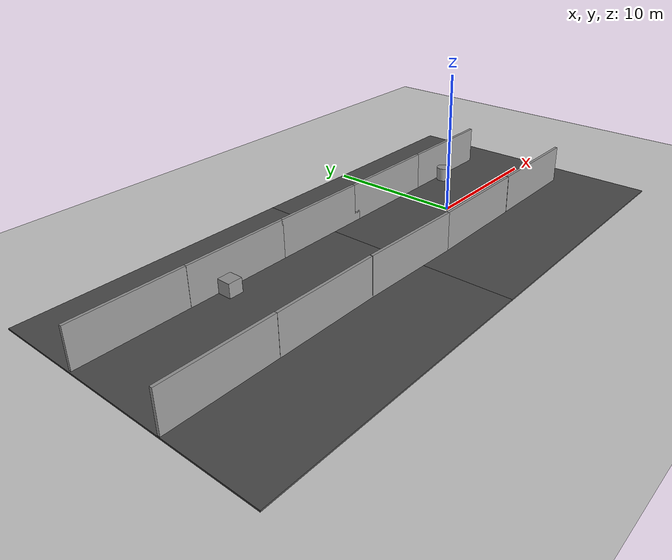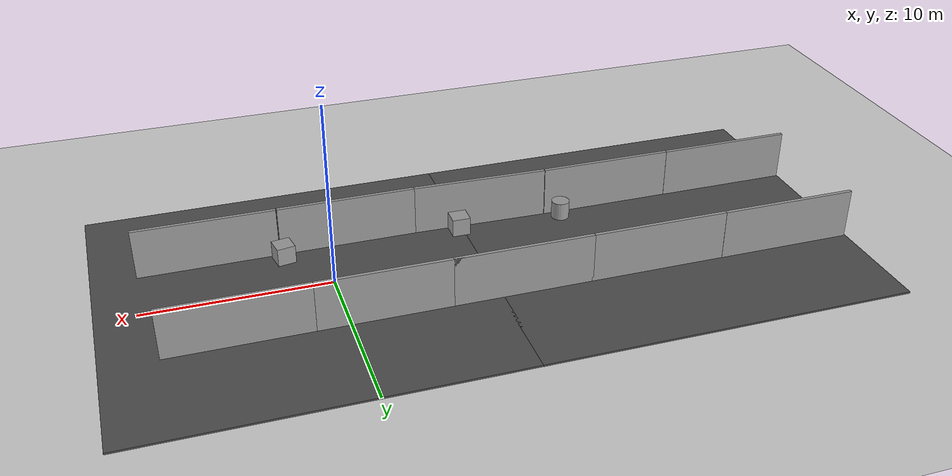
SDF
<sdf version="1.4">
 <world name="default">
  <physics type="ode">
   <gravity>0 0 -9.8</gravity>
   <ode>
    <solver><type>quick</type><iters>20</iters><sor>1</sor></solver>
    <constraints>
     <cfm>0</cfm>
     <erp>0.2</erp>
     <contact_max_correcting_vel>100</contact_max_correcting_vel>
     <contact_surface_layer>0</contact_surface_layer>
    </constraints>
   </ode>
   <max_step_size>0.001</max_step_size>
   <real_time_factor>1</real_time_factor>
   <real_time_update_rate>1000</real_time_update_rate>
  </physics>
  <light name="sun" type="directional">
   <pose>0 0 10 0 -0 0</pose>
   <diffuse>0.8 0.8 0.8 1</diffuse>
   <specular>0.2 0.2 0.2 1</specular>
   <attenuation>
    <range>1000</range>
    <constant>0.9</constant>
    <linear>0.01</linear>
    <quadratic>0.001</quadratic>
   </attenuation>
   <direction>-0.5 0.1 -0.9</direction>
  </light>
  <model name="ground_plane">
   <static>1</static>
   <link name="link">
    <collision name="collision">
     <geometry><plane><normal>0 0 1</normal><size>100 100</size></plane></geometry>
     <surface><friction><ode><mu>100</mu><mu2>50</mu2></ode></friction></surface>
    </collision>
    <visual name="visual">
     <cast_shadows>0</cast_shadows>
     <geometry><plane><normal>0 0 1</normal><size>100 100</size></plane></geometry>
     <material>
      <script><uri>file://media/materials/scripts/gazebo.material</uri><name>Gazebo/Grey</name></script>
     </material>
    </visual>
    <velocity_decay><linear>0</linear><angular>0</angular></velocity_decay>
   </link>
  </model>
  <scene><ambient>0.4 0.4 0.4 1</ambient><background>0.7 0.7 0.7 1</background><shadows>1</shadows></scene>
  <spherical_coordinates>
   <surface_model>EARTH_WGS84</surface_model>
   <latitude_deg>0</latitude_deg>
   <longitude_deg>0</longitude_deg>
   <elevation>0</elevation>
   <heading_deg>0</heading_deg>
  </spherical_coordinates>
  <model name="unit_box_1">
   <pose>2.11377 -2.87854 0.55 1e-06 -2.64698e-23 0.170882</pose>
   <link name="link">
    <inertial>
     <mass>1</mass>
     <inertia><ixx>1</ixx><ixy>0</ixy><ixz>0</ixz><iyy>1</iyy><iyz>0</iyz><izz>1</izz></inertia>
    </inertial>
    <collision name="collision"><geometry><box><size>1 1 1</size></box></geometry></collision>
    <visual name="visual">
     <geometry><box><size>1 1 1</size></box></geometry>
     <material>
      <script><uri>file://media/materials/scripts/gazebo.material</uri><name>Gazebo/Grey</name></script>
     </material>
    </visual>
    <velocity_decay><linear>0</linear><angular>0</angular></velocity_decay>
   </link>
   <static>0</static>
  </model>
  <model name="unit_cylinder_1">
   <pose>4.47184 3.4 0.550002 4e-06 -2e-06 -1.7e-05</pose>
   <link name="link">
    <inertial>
     <mass>1</mass>
     <inertia><ixx>1</ixx><ixy>0</ixy><ixz>0</ixz><iyy>1</iyy><iyz>0</iyz><izz>1</izz></inertia>
    </inertial>
    <collision name="collision">
     <geometry><cylinder><radius>0.5</radius><length>1</length></cylinder></geometry>
    </collision>
    <visual name="visual">
     <geometry><cylinder><radius>0.5</radius><length>1</length></cylinder></geometry>
     <material>
      <script><uri>file://media/materials/scripts/gazebo.material</uri><name>Gazebo/Grey</name></script>
     </material>
    </visual>
    <velocity_decay><linear>0</linear><angular>0</angular></velocity_decay>
   </link>
   <static>0</static>
  </model>
  <model name="unit_cylinder_3">
   <pose>-13.5577 -2.72953 0.550004 6e-06 -5e-06 2.1e-05</pose>
   <link name="link">
    <inertial>
     <mass>1</mass>
     <inertia><ixx>1</ixx><ixy>0</ixy><ixz>0</ixz><iyy>1</iyy><iyz>0</iyz><izz>1</izz></inertia>
    </inertial>
    <collision name="collision">
     <geometry><cylinder><radius>0.5</radius><length>1</length></cylinder></geometry>
    </collision>
    <visual name="visual">
     <geometry><cylinder><radius>0.5</radius><length>1</length></cylinder></geometry>
     <material>
      <script><uri>file://media/materials/scripts/gazebo.material</uri><name>Gazebo/Grey</name></script>
     </material>
    </visual>
    <velocity_decay><linear>0</linear><angular>0</angular></velocity_decay>
   </link>
   <static>0</static>
  </model>
  <model name="unit_box_3">
   <pose>-17.6574 3.39931 0.55 0 -1e-06 0.00013</pose>
   <link name="link">
    <inertial>
     <mass>1</mass>
     <inertia><ixx>1</ixx><ixy>0</ixy><ixz>0</ixz><iyy>1</iyy><iyz>0</iyz><izz>1</izz></inertia>
    </inertial>
    <collision name="collision"><geometry><box><size>1 1 1</size></box></geometry></collision>
    <visual name="visual">
     <geometry><box><size>1 1 1</size></box></geometry>
     <material>
      <script><uri>file://media/materials/scripts/gazebo.material</uri><name>Gazebo/Grey</name></script>
     </material>
    </visual>
    <velocity_decay><linear>0</linear><angular>0</angular></velocity_decay>
   </link>
   <static>0</static>
  </model>
  <model name="unit_box_10">
   <pose>-7.63848 -2.88781 0.550001 -3e-06 -0 -0.012243</pose>
   <link name="link">
    <inertial>
     <mass>1</mass>
     <inertia><ixx>1</ixx><ixy>0</ixy><ixz>0</ixz><iyy>1</iyy><iyz>0</iyz><izz>1</izz></inertia>
    </inertial>
    <collision name="collision"><geometry><box><size>1 1 1</size></box></geometry></collision>
    <visual name="visual">
     <geometry><box><size>1 1 1</size></box></geometry>
     <material>
      <script><uri>file://media/materials/scripts/gazebo.material</uri><name>Gazebo/Grey</name></script>
     </material>
    </visual>
    <velocity_decay><linear>0</linear><angular>0</angular></velocity_decay>
   </link>
   <static>0</static>
  </model>
  <model name="asphalt_plane">
   <static>1</static>
   <link name="link">
    <collision name="collision"><geometry><box><size>20 20 0.1</size></box></geometry></collision>
    <visual name="visual">
     <cast_shadows>0</cast_shadows>
     <geometry><box><size>20 20 0.1</size></box></geometry>
     <material>
      <script>
       <uri>model://asphalt_plane/materials/scripts</uri>
       <uri>model://asphalt_plane/materials/textures</uri>
       <name>vrc/asphalt</name>
      </script>
     </material>
    </visual>
    <velocity_decay><linear>0</linear><angular>0</angular></velocity_decay>
   </link>
   <pose>2.11096 0.047895 0 0 -0 0</pose>
  </model>
  <model name="grey_wall">
   <static>1</static>
   <link name="link">
    <pose>0 0 1.4 0 -0 0</pose>
    <collision name="collision"><geometry><box><size>7.5 0.2 2.8</size></box></geometry></collision>
    <visual name="visual">
     <cast_shadows>0</cast_shadows>
     <geometry><box><size>7.5 0.2 2.8</size></box></geometry>
     <material>
      <script>
       <uri>model://grey_wall/materials/scripts</uri>
       <uri>model://grey_wall/materials/textures</uri>
       <name>vrc/grey_wall</name>
      </script>
     </material>
    </visual>
    <velocity_decay><linear>0</linear><angular>0</angular></velocity_decay>
   </link>
   <pose>-9.01495 -3.45912 -0 0 0 -0.026807</pose>
  </model>
  <model name="grey_wall_0">
   <static>1</static>
   <link name="link">
    <pose>0 0 1.4 0 -0 0</pose>
    <collision name="collision"><geometry><box><size>7.5 0.2 2.8</size></box></geometry></collision>
    <visual name="visual">
     <cast_shadows>0</cast_shadows>
     <geometry><box><size>7.5 0.2 2.8</size></box></geometry>
     <material>
      <script>
       <uri>model://grey_wall/materials/scripts</uri>
       <uri>model://grey_wall/materials/textures</uri>
       <name>vrc/grey_wall</name>
      </script>
     </material>
    </visual>
    <velocity_decay><linear>0</linear><angular>0</angular></velocity_decay>
   </link>
   <pose>-9 4 0 0 -0 0</pose>
  </model>
  <model name="grey_wall_1">
   <static>1</static>
   <link name="link">
    <pose>0 0 1.4 0 -0 0</pose>
    <collision name="collision"><geometry><box><size>7.5 0.2 2.8</size></box></geometry></collision>
    <visual name="visual">
     <cast_shadows>0</cast_shadows>
     <geometry><box><size>7.5 0.2 2.8</size></box></geometry>
     <material>
      <script>
       <uri>model://grey_wall/materials/scripts</uri>
       <uri>model://grey_wall/materials/textures</uri>
       <name>vrc/grey_wall</name>
      </script>
     </material>
    </visual>
    <velocity_decay><linear>0</linear><angular>0</angular></velocity_decay>
   </link>
   <pose>-2 4 0 0 -0 0</pose>
  </model>
  <model name="grey_wall_2">
   <static>1</static>
   <link name="link">
    <pose>0 0 1.4 0 -0 0</pose>
    <collision name="collision"><geometry><box><size>7.5 0.2 2.8</size></box></geometry></collision>
    <visual name="visual">
     <cast_shadows>0</cast_shadows>
     <geometry><box><size>7.5 0.2 2.8</size></box></geometry>
     <material>
      <script>
       <uri>model://grey_wall/materials/scripts</uri>
       <uri>model://grey_wall/materials/textures</uri>
       <name>vrc/grey_wall</name>
      </script>
     </material>
    </visual>
    <velocity_decay><linear>0</linear><angular>0</angular></velocity_decay>
   </link>
   <pose>5.49448 4 0 0 -0 0</pose>
  </model>
  <model name="grey_wall_3">
   <static>1</static>
   <link name="link">
    <pose>0 0 1.4 0 -0 0</pose>
    <collision name="collision"><geometry><box><size>7.5 0.2 2.8</size></box></geometry></collision>
    <visual name="visual">
     <cast_shadows>0</cast_shadows>
     <geometry><box><size>7.5 0.2 2.8</size></box></geometry>
     <material>
      <script>
       <uri>model://grey_wall/materials/scripts</uri>
       <uri>model://grey_wall/materials/textures</uri>
       <name>vrc/grey_wall</name>
      </script>
     </material>
    </visual>
    <velocity_decay><linear>0</linear><angular>0</angular></velocity_decay>
   </link>
   <pose>-1.54611 -3.55647 0 0 -0 0</pose>
  </model>
  <model name="grey_wall_4">
   <static>1</static>
   <link name="link">
    <pose>0 0 1.4 0 -0 0</pose>
    <collision name="collision"><geometry><box><size>7.5 0.2 2.8</size></box></geometry></collision>
    <visual name="visual">
     <cast_shadows>0</cast_shadows>
     <geometry><box><size>7.5 0.2 2.8</size></box></geometry>
     <material>
      <script>
       <uri>model://grey_wall/materials/scripts</uri>
       <uri>model://grey_wall/materials/textures</uri>
       <name>vrc/grey_wall</name>
      </script>
     </material>
    </visual>
    <velocity_decay><linear>0</linear><angular>0</angular></velocity_decay>
   </link>
   <pose>6 -3.54794 0 0 -0 0</pose>
  </model>
  <model name="asphalt_plane_0">
   <static>1</static>
   <link name="link">
    <collision name="collision"><geometry><box><size>20 20 0.1</size></box></geometry></collision>
    <visual name="visual">
     <cast_shadows>0</cast_shadows>
     <geometry><box><size>20 20 0.1</size></box></geometry>
     <material>
      <script>
       <uri>model://asphalt_plane/materials/scripts</uri>
       <uri>model://asphalt_plane/materials/textures</uri>
       <name>vrc/asphalt</name>
      </script>
     </material>
    </visual>
    <velocity_decay><linear>0</linear><angular>0</angular></velocity_decay>
   </link>
   <pose>-17.7514 0.049467 0 0 -0 0</pose>
  </model>
  <model name="grey_wall_5">
   <static>1</static>
   <link name="link">
    <pose>0 0 1.4 0 -0 0</pose>
    <collision name="collision"><geometry><box><size>7.5 0.2 2.8</size></box></geometry></collision>
    <visual name="visual">
     <cast_shadows>0</cast_shadows>
     <geometry><box><size>7.5 0.2 2.8</size></box></geometry>
     <material>
      <script>
       <uri>model://grey_wall/materials/scripts</uri>
       <uri>model://grey_wall/materials/textures</uri>
       <name>vrc/grey_wall</name>
      </script>
     </material>
    </visual>
    <velocity_decay><linear>0</linear><angular>0</angular></velocity_decay>
   </link>
   <pose>-16.4196 4 0 0 -0 0</pose>
  </model>
  <model name="grey_wall_6">
   <static>1</static>
   <link name="link">
    <pose>0 0 1.4 0 -0 0</pose>
    <collision name="collision"><geometry><box><size>7.5 0.2 2.8</size></box></geometry></collision>
    <visual name="visual">
     <cast_shadows>0</cast_shadows>
     <geometry><box><size>7.5 0.2 2.8</size></box></geometry>
     <material>
      <script>
       <uri>model://grey_wall/materials/scripts</uri>
       <uri>model://grey_wall/materials/textures</uri>
       <name>vrc/grey_wall</name>
      </script>
     </material>
    </visual>
    <velocity_decay><linear>0</linear><angular>0</angular></velocity_decay>
   </link>
   <pose>-16.5372 -3.35247 0 0 -0 0</pose>
  </model>
  <model name="grey_wall_7">
   <static>1</static>
   <link name="link">
    <pose>0 0 1.4 0 -0 0</pose>
    <collision name="collision"><geometry><box><size>7.5 0.2 2.8</size></box></geometry></collision>
    <visual name="visual">
     <cast_shadows>0</cast_shadows>
     <geometry><box><size>7.5 0.2 2.8</size></box></geometry>
     <material>
      <script>
       <uri>model://grey_wall/materials/scripts</uri>
       <uri>model://grey_wall/materials/textures</uri>
       <name>vrc/grey_wall</name>
      </script>
     </material>
    </visual>
    <velocity_decay><linear>0</linear><angular>0</angular></velocity_decay>
   </link>
   <pose>-23.913 4.00991 0 0 -0 0</pose>
  </model>
  <model name="grey_wall_8">
   <static>1</static>
   <link name="link">
    <pose>0 0 1.4 0 -0 0</pose>
    <collision name="collision"><geometry><box><size>7.5 0.2 2.8</size></box></geometry></collision>
    <visual name="visual">
     <cast_shadows>0</cast_shadows>
     <geometry><box><size>7.5 0.2 2.8</size></box></geometry>
     <material>
      <script>
       <uri>model://grey_wall/materials/scripts</uri>
       <uri>model://grey_wall/materials/textures</uri>
       <name>vrc/grey_wall</name>
      </script>
     </material>
    </visual>
    <velocity_decay><linear>0</linear><angular>0</angular></velocity_decay>
   </link>
   <pose>-23.9641 -3.34323 0 0 -0 0</pose>
  </model>
 </world>
</sdf>
